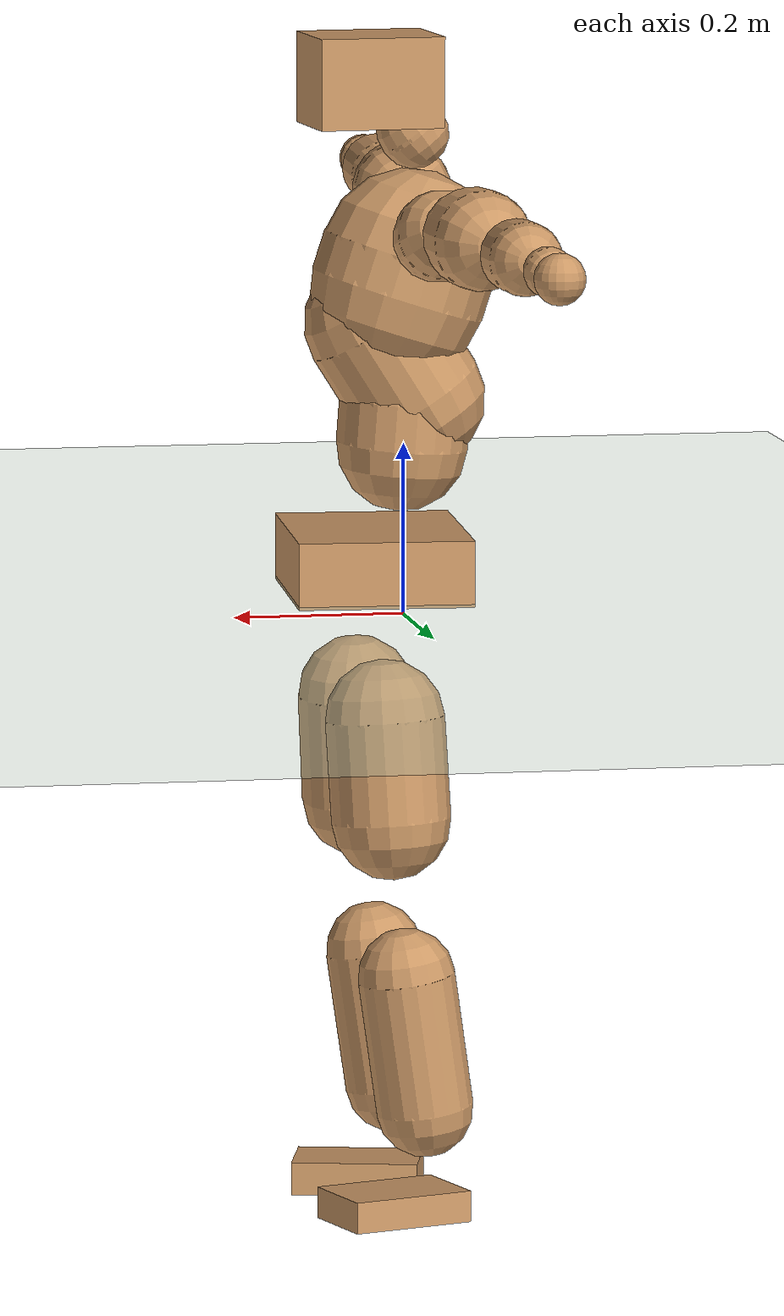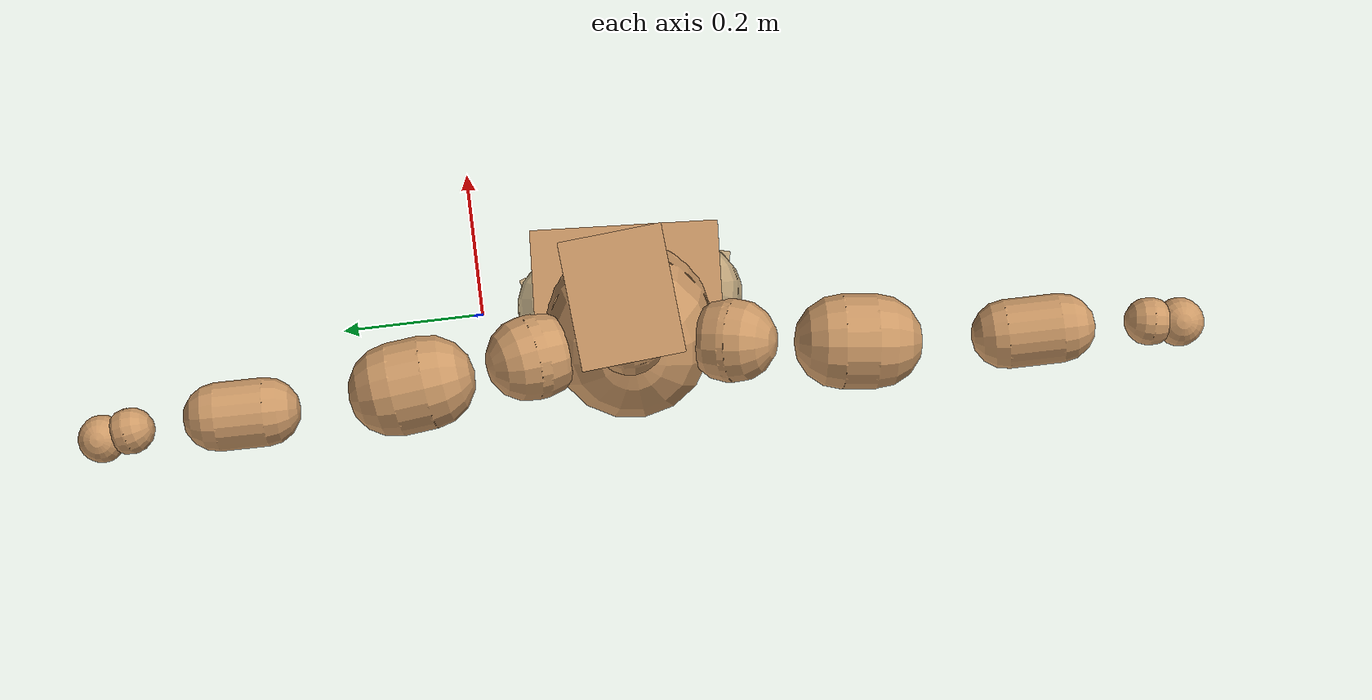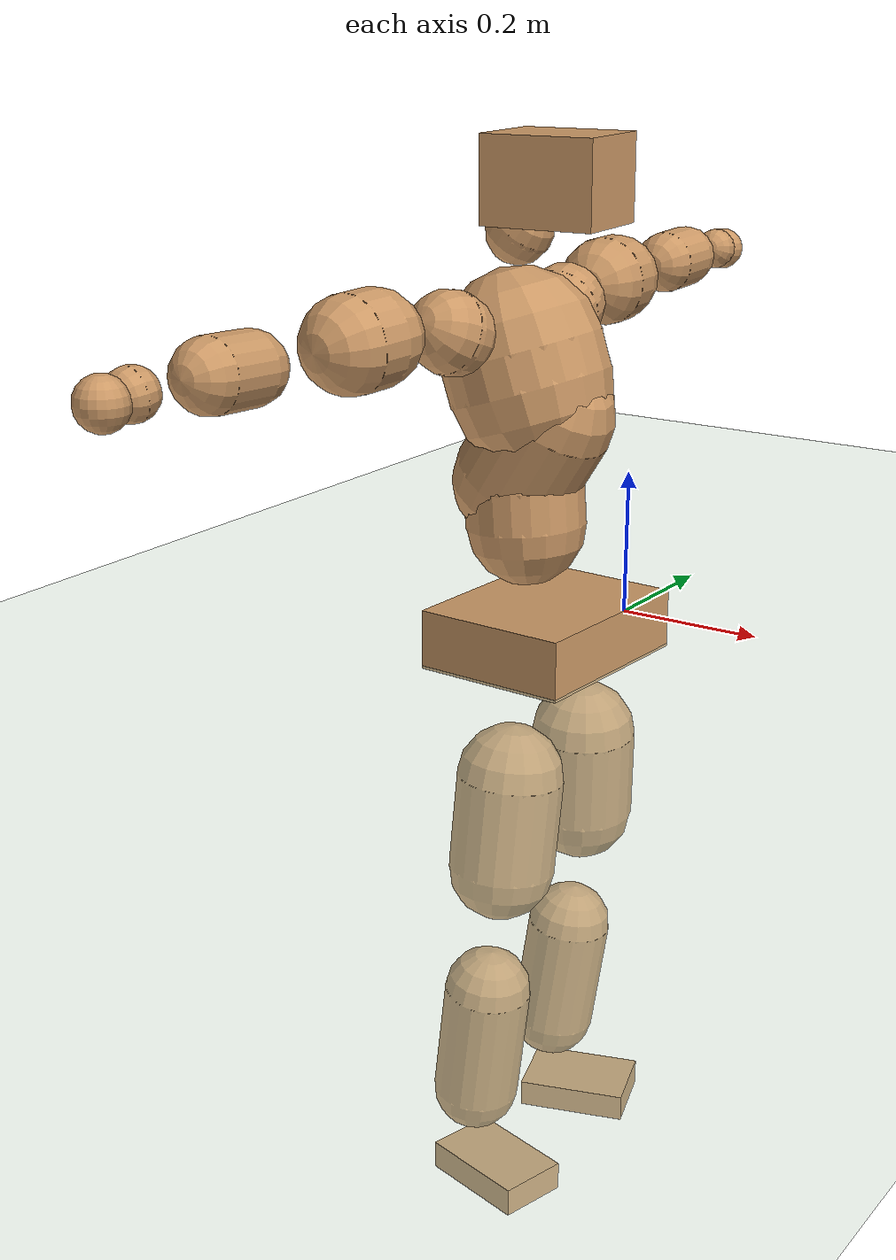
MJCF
<mujoco model="humanoid">
  <compiler coordinate="local" angle="radian"/>
  <default>
    <joint damping="0.0" armature="0.01" stiffness="0.0" limited="true"/>
    <geom conaffinity="1" condim="3" contype="7" margin="0.001" rgba="0.8 0.6 .4 1"/>
  </default>
  <asset>
    <texture type="skybox" builtin="gradient" rgb1=".4 .5 .6" rgb2="0 0 0" width="100" height="100"/>
    <texture builtin="flat" height="1278" mark="cross" markrgb="1 1 1" name="texgeom" random="0.01" rgb1="0.8 0.6 0.4" rgb2="0.8 0.6 0.4" type="cube" width="127"/>
    <texture builtin="checker" height="100" name="texplane" rgb1="0 0 0" rgb2="0.8 0.8 0.8" type="2d" width="100"/>
    <material name="MatPlane" reflectance="0.5" shininess="1" specular="1" texrepeat="60 60" texture="texplane"/>
    <material name="geom" texture="texgeom" texuniform="true"/>
  </asset>
  <worldbody>
    <light cutoff="100" diffuse="1 1 1" dir="-0 0 -1.3" directional="true" exponent="1" pos="0 0 1.3" specular=".1 .1 .1"/>
    <geom conaffinity="1" condim="3" name="floor" pos="0 0 0" rgba="0.8 0.9 0.8 1" size="100 100 .2" type="plane" material="MatPlane"/>
    <body name="Pelvis" pos="0.0024 -0.2078 0.0462">
      <freejoint name="Pelvis"/>
      <geom type="box" contype="1" conaffinity="1" density="5359.375076" pos="-0.0041 0.0002 -0.0124" size="0.1043 0.1315 0.0395" quat="0.9996 0.0000 0.0000 -0.0279" name="Pelvis"/>
      <body name="L_Hip" pos="0.0046 0.0882 -0.0875">
        <joint name="L_Hip_x" type="hinge" pos="0 0 0" axis="1 0 0" stiffness="1600" damping="160" armature="0.02" range="-180.0000 180.0000"/>
        <joint name="L_Hip_y" type="hinge" pos="0 0 0" axis="0 1 0" stiffness="1600" damping="160" armature="0.02" range="-180.0000 180.0000"/>
        <joint name="L_Hip_z" type="hinge" pos="0 0 0" axis="0 0 1" stiffness="1600" damping="160" armature="0.02" range="-180.0000 180.0000"/>
        <geom type="capsule" contype="1" conaffinity="1" density="2040.816327" size="0.0709" fromto="-0.0051 0.0062 -0.1006 -0.0113 0.0138 -0.2219" name="L_Hip"/>
        <body name="L_Knee" pos="-0.0164 0.02 -0.3225">
          <joint name="L_Knee_x" type="hinge" pos="0 0 0" axis="1 0 0" stiffness="1600" damping="160" armature="0.02" range="-180.0000 180.0000"/>
          <joint name="L_Knee_y" type="hinge" pos="0 0 0" axis="0 1 0" stiffness="1600" damping="160" armature="0.02" range="-180.0000 180.0000"/>
          <joint name="L_Knee_z" type="hinge" pos="0 0 0" axis="0 0 1" stiffness="1600" damping="160" armature="0.02" range="-180.0000 180.0000"/>
          <geom type="capsule" contype="1" conaffinity="1" density="1234.567901" size="0.0582" fromto="-0.0125 -0.0022 -0.0873 -0.0355 -0.0062 -0.2476" name="L_Knee"/>
          <body name="L_Ankle" pos="-0.0481 -0.0084 -0.3349">
            <joint name="L_Ankle_x" type="hinge" pos="0 0 0" axis="1 0 0" stiffness="1600" damping="160" armature="0.02" range="-180.0000 180.0000"/>
            <joint name="L_Ankle_y" type="hinge" pos="0 0 0" axis="0 1 0" stiffness="1600" damping="160" armature="0.02" range="-180.0000 180.0000"/>
            <joint name="L_Ankle_z" type="hinge" pos="0 0 0" axis="0 0 1" stiffness="1600" damping="160" armature="0.02" range="-180.0000 180.0000"/>
            <geom type="box" contype="1" conaffinity="1" density="1000.000065" pos="0.0522 0.0163 -0.0251" size="0.0757 0.052 0.0187" quat="0.9886 0.0000 0.0000 0.1503" name="L_Ankle"/>
            <body name="L_Toe" pos="0.1044 0.0325 -0.0503">
              <joint name="L_Toe_x" type="hinge" pos="0 0 0" axis="1 0 0" stiffness="1000" damping="100" armature="0.02" range="-180.0000 180.0000"/>
              <joint name="L_Toe_y" type="hinge" pos="0 0 0" axis="0 1 0" stiffness="1000" damping="100" armature="0.02" range="-180.0000 180.0000"/>
              <joint name="L_Toe_z" type="hinge" pos="0 0 0" axis="0 0 1" stiffness="1000" damping="100" armature="0.02" range="-180.0000 180.0000"/>
              <geom type="box" contype="1" conaffinity="1" density="7450668.427621" pos="0.0000 0.0000 0.0264" size="0.001 0.0024 0.001" quat="0.9877 0.0000 0.0000 0.1561" name="L_Toe"/>
            </body>
          </body>
        </body>
      </body>
      <body name="R_Hip" pos="0.0063 -0.0865 -0.0873">
        <joint name="R_Hip_x" type="hinge" pos="0 0 0" axis="1 0 0" stiffness="1600" damping="160" armature="0.02" range="-180.0000 180.0000"/>
        <joint name="R_Hip_y" type="hinge" pos="0 0 0" axis="0 1 0" stiffness="1600" damping="160" armature="0.02" range="-180.0000 180.0000"/>
        <joint name="R_Hip_z" type="hinge" pos="0 0 0" axis="0 0 1" stiffness="1600" damping="160" armature="0.02" range="-180.0000 180.0000"/>
        <geom type="capsule" contype="1" conaffinity="1" density="2040.816327" size="0.0703" fromto="-0.0052 -0.0081 -0.0999 -0.0119 -0.0185 -0.2293" name="R_Hip"/>
        <body name="R_Knee" pos="-0.017 -0.0265 -0.3292">
          <joint name="R_Knee_x" type="hinge" pos="0 0 0" axis="1 0 0" stiffness="1600" damping="160" armature="0.02" range="-180.0000 180.0000"/>
          <joint name="R_Knee_y" type="hinge" pos="0 0 0" axis="0 1 0" stiffness="1600" damping="160" armature="0.02" range="-180.0000 180.0000"/>
          <joint name="R_Knee_z" type="hinge" pos="0 0 0" axis="0 0 1" stiffness="1600" damping="160" armature="0.02" range="-180.0000 180.0000"/>
          <geom type="capsule" contype="1" conaffinity="1" density="1234.567901" size="0.0582" fromto="-0.0123 0.0026 -0.0873 -0.0356 0.0076 -0.2530" name="R_Knee"/>
          <body name="R_Ankle" pos="-0.0479 0.0102 -0.3403">
            <joint name="R_Ankle_x" type="hinge" pos="0 0 0" axis="1 0 0" stiffness="1600" damping="160" armature="0.02" range="-180.0000 180.0000"/>
            <joint name="R_Ankle_y" type="hinge" pos="0 0 0" axis="0 1 0" stiffness="1600" damping="160" armature="0.02" range="-180.0000 180.0000"/>
            <joint name="R_Ankle_z" type="hinge" pos="0 0 0" axis="0 0 1" stiffness="1600" damping="160" armature="0.02" range="-180.0000 180.0000"/>
            <geom type="box" contype="1" conaffinity="1" density="1000.000046" pos="0.0546 -0.0143 -0.0224" size="0.0763 0.0475 0.0199" quat="0.9918 0.0000 0.0000 -0.1281" name="R_Ankle"/>
            <body name="R_Toe" pos="0.1091 -0.0287 -0.0449">
              <joint name="R_Toe_x" type="hinge" pos="0 0 0" axis="1 0 0" stiffness="1000" damping="100" armature="0.02" range="-180.0000 180.0000"/>
              <joint name="R_Toe_y" type="hinge" pos="0 0 0" axis="0 1 0" stiffness="1000" damping="100" armature="0.02" range="-180.0000 180.0000"/>
              <joint name="R_Toe_z" type="hinge" pos="0 0 0" axis="0 0 1" stiffness="1000" damping="100" armature="0.02" range="-180.0000 180.0000"/>
              <geom type="box" contype="1" conaffinity="1" density="7602521.248116" pos="0.0000 0.0000 0.0238" size="0.001 0.0023 0.0011" quat="0.9931 0.0000 0.0000 -0.1175" name="R_Toe"/>
            </body>
          </body>
        </body>
      </body>
      <body name="Torso" pos="-0.0354 -0.0003 0.1003">
        <joint name="Torso_x" type="hinge" pos="0 0 0" axis="1 0 0" stiffness="2000" damping="200" armature="0.02" range="-180.0000 180.0000"/>
        <joint name="Torso_y" type="hinge" pos="0 0 0" axis="0 1 0" stiffness="2000" damping="200" armature="0.02" range="-180.0000 180.0000"/>
        <joint name="Torso_z" type="hinge" pos="0 0 0" axis="0 0 1" stiffness="2000" damping="200" armature="0.02" range="-180.0000 180.0000"/>
        <geom type="capsule" contype="1" conaffinity="1" density="2040.816327" size="0.0785" fromto="-0.0061 0.0008 0.0783 -0.0019 0.0002 0.0240" name="Torso"/>
        <body name="Spine" pos="-0.0079 0.0011 0.1023">
          <joint name="Spine_x" type="hinge" pos="0 0 0" axis="1 0 0" stiffness="2000" damping="200" armature="0.02" range="-180.0000 180.0000"/>
          <joint name="Spine_y" type="hinge" pos="0 0 0" axis="0 1 0" stiffness="2000" damping="200" armature="0.02" range="-180.0000 180.0000"/>
          <joint name="Spine_z" type="hinge" pos="0 0 0" axis="0 0 1" stiffness="2000" damping="200" armature="0.02" range="-180.0000 180.0000"/>
          <geom type="capsule" contype="1" conaffinity="1" density="2040.816327" size="0.0808" fromto="0.0429 -0.0004 0.0684 -0.0135 0.0001 -0.0215" name="Spine"/>
          <body name="Chest" pos="0.0294 -0.0003 0.0469">
            <joint name="Chest_x" type="hinge" pos="0 0 0" axis="1 0 0" stiffness="2000" damping="200" armature="0.02" range="-180.0000 180.0000"/>
            <joint name="Chest_y" type="hinge" pos="0 0 0" axis="0 1 0" stiffness="2000" damping="200" armature="0.02" range="-180.0000 180.0000"/>
            <joint name="Chest_z" type="hinge" pos="0 0 0" axis="0 0 1" stiffness="2000" damping="200" armature="0.02" range="-180.0000 180.0000"/>
            <geom type="capsule" contype="1" conaffinity="1" density="2040.816327" size="0.1052" fromto="-0.0325 -0.0010 0.1001 -0.0175 -0.0005 0.0540" name="Chest"/>
            <body name="Neck" pos="-0.0611 -0.0014 0.2178">
              <joint name="Neck_x" type="hinge" pos="0 0 0" axis="1 0 0" stiffness="1000" damping="100" armature="0.02" range="-180.0000 180.0000"/>
              <joint name="Neck_y" type="hinge" pos="0 0 0" axis="0 1 0" stiffness="1000" damping="100" armature="0.02" range="-180.0000 180.0000"/>
              <joint name="Neck_z" type="hinge" pos="0 0 0" axis="0 0 1" stiffness="1000" damping="100" armature="0.02" range="-180.0000 180.0000"/>
              <geom type="capsule" contype="1" conaffinity="1" density="1000" size="0.0421" fromto="0.0264 0.0011 0.0328 0.0232 0.0010 0.0287" name="Neck"/>
              <body name="Head" pos="0.0496 0.0021 0.0615">
                <joint name="Head_x" type="hinge" pos="0 0 0" axis="1 0 0" stiffness="1000" damping="100" armature="0.02" range="-180.0000 180.0000"/>
                <joint name="Head_y" type="hinge" pos="0 0 0" axis="0 1 0" stiffness="1000" damping="100" armature="0.02" range="-180.0000 180.0000"/>
                <joint name="Head_z" type="hinge" pos="0 0 0" axis="0 0 1" stiffness="1000" damping="100" armature="0.02" range="-180.0000 180.0000"/>
                <geom type="box" contype="1" conaffinity="1" density="2249.999936" pos="0.0258 0.0021 0.0317" size="0.0748 0.0602 0.0539" quat="0.9992 0.0000 0.0000 0.0400" name="Head"/>
              </body>
            </body>
            <body name="L_Thorax" pos="-0.041 0.0779 0.1227">
              <joint name="L_Thorax_x" type="hinge" pos="0 0 0" axis="1 0 0" stiffness="1000" damping="100" armature="0.02" range="-180.0000 180.0000"/>
              <joint name="L_Thorax_y" type="hinge" pos="0 0 0" axis="0 1 0" stiffness="1000" damping="100" armature="0.02" range="-180.0000 180.0000"/>
              <joint name="L_Thorax_z" type="hinge" pos="0 0 0" axis="0 0 1" stiffness="1000" damping="100" armature="0.02" range="-180.0000 180.0000"/>
              <geom type="capsule" contype="1" conaffinity="1" density="1000" size="0.0532" fromto="-0.0066 0.0501 0.0166 -0.0048 0.0367 0.0122" name="L_Thorax"/>
              <body name="L_Shoulder" pos="-0.0114 0.0867 0.0288">
                <joint name="L_Shoulder_x" type="hinge" pos="0 0 0" axis="1 0 0" stiffness="1000" damping="100" armature="0.02" range="-720.0000 720.0000"/>
                <joint name="L_Shoulder_y" type="hinge" pos="0 0 0" axis="0 1 0" stiffness="1000" damping="100" armature="0.02" range="-720.0000 720.0000"/>
                <joint name="L_Shoulder_z" type="hinge" pos="0 0 0" axis="0 0 1" stiffness="1000" damping="100" armature="0.02" range="-720.0000 720.0000"/>
                <geom type="capsule" contype="1" conaffinity="1" density="1000" size="0.0587" fromto="-0.0097 0.0882 -0.0013 -0.0142 0.1292 -0.0019" name="L_Shoulder"/>
                <body name="L_Elbow" pos="-0.0239 0.2174 -0.0032">
                  <joint name="L_Elbow_x" type="hinge" pos="0 0 0" axis="1 0 0" stiffness="1000" damping="100" armature="0.02" range="-720.0000 720.0000"/>
                  <joint name="L_Elbow_y" type="hinge" pos="0 0 0" axis="0 1 0" stiffness="1000" damping="100" armature="0.02" range="-720.0000 720.0000"/>
                  <joint name="L_Elbow_z" type="hinge" pos="0 0 0" axis="0 0 1" stiffness="1000" damping="100" armature="0.02" range="-720.0000 720.0000"/>
                  <geom type="capsule" contype="1" conaffinity="1" density="1000" size="0.0425" fromto="0.0008 0.0724 0.0025 0.0014 0.1323 0.0046" name="L_Elbow"/>
                  <body name="L_Wrist" pos="0.0022 0.2047 0.0071">
                    <joint name="L_Wrist_x" type="hinge" pos="0 0 0" axis="1 0 0" stiffness="600" damping="60" armature="0.02" range="-180.0000 180.0000"/>
                    <joint name="L_Wrist_y" type="hinge" pos="0 0 0" axis="0 1 0" stiffness="600" damping="60" armature="0.02" range="-180.0000 180.0000"/>
                    <joint name="L_Wrist_z" type="hinge" pos="0 0 0" axis="0 0 1" stiffness="600" damping="60" armature="0.02" range="-180.0000 180.0000"/>
                    <geom type="capsule" contype="1" conaffinity="1" density="1000" size="0.0288" fromto="-0.0056 0.0355 -0.0042 -0.0059 0.0374 -0.0045" name="L_Wrist"/>
                    <body name="L_Hand" pos="-0.0115 0.0729 -0.0087">
                      <joint name="L_Hand_x" type="hinge" pos="0 0 0" axis="1 0 0" stiffness="600" damping="60" armature="0.02" range="-180.0000 180.0000"/>
                      <joint name="L_Hand_y" type="hinge" pos="0 0 0" axis="0 1 0" stiffness="600" damping="60" armature="0.02" range="-180.0000 180.0000"/>
                      <joint name="L_Hand_z" type="hinge" pos="0 0 0" axis="0 0 1" stiffness="600" damping="60" armature="0.02" range="-180.0000 180.0000"/>
                      <geom type="sphere" contype="1" conaffinity="1" density="1000" size="0.0297" pos="0.0000 0.0000 0.0000" name="L_Hand"/>
                    </body>
                  </body>
                </body>
              </body>
            </body>
            <body name="R_Thorax" pos="-0.048 -0.081 0.1217">
              <joint name="R_Thorax_x" type="hinge" pos="0 0 0" axis="1 0 0" stiffness="1000" damping="100" armature="0.02" range="-180.0000 180.0000"/>
              <joint name="R_Thorax_y" type="hinge" pos="0 0 0" axis="0 1 0" stiffness="1000" damping="100" armature="0.02" range="-180.0000 180.0000"/>
              <joint name="R_Thorax_z" type="hinge" pos="0 0 0" axis="0 0 1" stiffness="1000" damping="100" armature="0.02" range="-180.0000 180.0000"/>
              <geom type="capsule" contype="1" conaffinity="1" density="1000" size="0.0521" fromto="-0.0070 -0.0484 0.0178 -0.0058 -0.0402 0.0147" name="R_Thorax"/>
              <body name="R_Shoulder" pos="-0.0128 -0.0886 0.0325">
                <joint name="R_Shoulder_x" type="hinge" pos="0 0 0" axis="1 0 0" stiffness="1000" damping="100" armature="0.02" range="-720.0000 720.0000"/>
                <joint name="R_Shoulder_y" type="hinge" pos="0 0 0" axis="0 1 0" stiffness="1000" damping="100" armature="0.02" range="-720.0000 720.0000"/>
                <joint name="R_Shoulder_z" type="hinge" pos="0 0 0" axis="0 0 1" stiffness="1000" damping="100" armature="0.02" range="-720.0000 720.0000"/>
                <geom type="capsule" contype="1" conaffinity="1" density="1000" size="0.0592" fromto="-0.0099 -0.0886 -0.0039 -0.0144 -0.1293 -0.0057" name="R_Shoulder"/>
                <body name="R_Elbow" pos="-0.0243 -0.2178 -0.0096">
                  <joint name="R_Elbow_x" type="hinge" pos="0 0 0" axis="1 0 0" stiffness="1000" damping="100" armature="0.02" range="-720.0000 720.0000"/>
                  <joint name="R_Elbow_y" type="hinge" pos="0 0 0" axis="0 1 0" stiffness="1000" damping="100" armature="0.02" range="-720.0000 720.0000"/>
                  <joint name="R_Elbow_z" type="hinge" pos="0 0 0" axis="0 0 1" stiffness="1000" damping="100" armature="0.02" range="-720.0000 720.0000"/>
                  <geom type="capsule" contype="1" conaffinity="1" density="1000" size="0.0427" fromto="0.0002 -0.0727 0.0032 0.0003 -0.1398 0.0061" name="R_Elbow"/>
                  <body name="R_Wrist" pos="0.0005 -0.2124 0.0093">
                    <joint name="R_Wrist_x" type="hinge" pos="0 0 0" axis="1 0 0" stiffness="600" damping="60" armature="0.02" range="-180.0000 180.0000"/>
                    <joint name="R_Wrist_y" type="hinge" pos="0 0 0" axis="0 1 0" stiffness="600" damping="60" armature="0.02" range="-180.0000 180.0000"/>
                    <joint name="R_Wrist_z" type="hinge" pos="0 0 0" axis="0 0 1" stiffness="600" damping="60" armature="0.02" range="-180.0000 180.0000"/>
                    <geom type="capsule" contype="1" conaffinity="1" density="1000" size="0.0298" fromto="-0.0047 -0.0361 -0.0033 -0.0050 -0.0380 -0.0035" name="R_Wrist"/>
                    <body name="R_Hand" pos="-0.0097 -0.0741 -0.0068">
                      <joint name="R_Hand_x" type="hinge" pos="0 0 0" axis="1 0 0" stiffness="600" damping="60" armature="0.02" range="-180.0000 180.0000"/>
                      <joint name="R_Hand_y" type="hinge" pos="0 0 0" axis="0 1 0" stiffness="600" damping="60" armature="0.02" range="-180.0000 180.0000"/>
                      <joint name="R_Hand_z" type="hinge" pos="0 0 0" axis="0 0 1" stiffness="600" damping="60" armature="0.02" range="-180.0000 180.0000"/>
                      <geom type="sphere" contype="1" conaffinity="1" density="1000" size="0.0303" pos="0.0000 0.0000 0.0000" name="R_Hand"/>
                    </body>
                  </body>
                </body>
              </body>
            </body>
          </body>
        </body>
      </body>
    </body>
  </worldbody>
  <actuator>
    <motor name="L_Hip_x" joint="L_Hip_x" gear="500"/>
    <motor name="L_Hip_y" joint="L_Hip_y" gear="500"/>
    <motor name="L_Hip_z" joint="L_Hip_z" gear="500"/>
    <motor name="L_Knee_x" joint="L_Knee_x" gear="500"/>
    <motor name="L_Knee_y" joint="L_Knee_y" gear="500"/>
    <motor name="L_Knee_z" joint="L_Knee_z" gear="500"/>
    <motor name="L_Ankle_x" joint="L_Ankle_x" gear="500"/>
    <motor name="L_Ankle_y" joint="L_Ankle_y" gear="500"/>
    <motor name="L_Ankle_z" joint="L_Ankle_z" gear="500"/>
    <motor name="L_Toe_x" joint="L_Toe_x" gear="500"/>
    <motor name="L_Toe_y" joint="L_Toe_y" gear="500"/>
    <motor name="L_Toe_z" joint="L_Toe_z" gear="500"/>
    <motor name="R_Hip_x" joint="R_Hip_x" gear="500"/>
    <motor name="R_Hip_y" joint="R_Hip_y" gear="500"/>
    <motor name="R_Hip_z" joint="R_Hip_z" gear="500"/>
    <motor name="R_Knee_x" joint="R_Knee_x" gear="500"/>
    <motor name="R_Knee_y" joint="R_Knee_y" gear="500"/>
    <motor name="R_Knee_z" joint="R_Knee_z" gear="500"/>
    <motor name="R_Ankle_x" joint="R_Ankle_x" gear="500"/>
    <motor name="R_Ankle_y" joint="R_Ankle_y" gear="500"/>
    <motor name="R_Ankle_z" joint="R_Ankle_z" gear="500"/>
    <motor name="R_Toe_x" joint="R_Toe_x" gear="500"/>
    <motor name="R_Toe_y" joint="R_Toe_y" gear="500"/>
    <motor name="R_Toe_z" joint="R_Toe_z" gear="500"/>
    <motor name="Torso_x" joint="Torso_x" gear="500"/>
    <motor name="Torso_y" joint="Torso_y" gear="500"/>
    <motor name="Torso_z" joint="Torso_z" gear="500"/>
    <motor name="Spine_x" joint="Spine_x" gear="500"/>
    <motor name="Spine_y" joint="Spine_y" gear="500"/>
    <motor name="Spine_z" joint="Spine_z" gear="500"/>
    <motor name="Chest_x" joint="Chest_x" gear="500"/>
    <motor name="Chest_y" joint="Chest_y" gear="500"/>
    <motor name="Chest_z" joint="Chest_z" gear="500"/>
    <motor name="Neck_x" joint="Neck_x" gear="500"/>
    <motor name="Neck_y" joint="Neck_y" gear="500"/>
    <motor name="Neck_z" joint="Neck_z" gear="500"/>
    <motor name="Head_x" joint="Head_x" gear="500"/>
    <motor name="Head_y" joint="Head_y" gear="500"/>
    <motor name="Head_z" joint="Head_z" gear="500"/>
    <motor name="L_Thorax_x" joint="L_Thorax_x" gear="500"/>
    <motor name="L_Thorax_y" joint="L_Thorax_y" gear="500"/>
    <motor name="L_Thorax_z" joint="L_Thorax_z" gear="500"/>
    <motor name="L_Shoulder_x" joint="L_Shoulder_x" gear="500"/>
    <motor name="L_Shoulder_y" joint="L_Shoulder_y" gear="500"/>
    <motor name="L_Shoulder_z" joint="L_Shoulder_z" gear="500"/>
    <motor name="L_Elbow_x" joint="L_Elbow_x" gear="500"/>
    <motor name="L_Elbow_y" joint="L_Elbow_y" gear="500"/>
    <motor name="L_Elbow_z" joint="L_Elbow_z" gear="500"/>
    <motor name="L_Wrist_x" joint="L_Wrist_x" gear="500"/>
    <motor name="L_Wrist_y" joint="L_Wrist_y" gear="500"/>
    <motor name="L_Wrist_z" joint="L_Wrist_z" gear="500"/>
    <motor name="L_Hand_x" joint="L_Hand_x" gear="500"/>
    <motor name="L_Hand_y" joint="L_Hand_y" gear="500"/>
    <motor name="L_Hand_z" joint="L_Hand_z" gear="500"/>
    <motor name="R_Thorax_x" joint="R_Thorax_x" gear="500"/>
    <motor name="R_Thorax_y" joint="R_Thorax_y" gear="500"/>
    <motor name="R_Thorax_z" joint="R_Thorax_z" gear="500"/>
    <motor name="R_Shoulder_x" joint="R_Shoulder_x" gear="500"/>
    <motor name="R_Shoulder_y" joint="R_Shoulder_y" gear="500"/>
    <motor name="R_Shoulder_z" joint="R_Shoulder_z" gear="500"/>
    <motor name="R_Elbow_x" joint="R_Elbow_x" gear="500"/>
    <motor name="R_Elbow_y" joint="R_Elbow_y" gear="500"/>
    <motor name="R_Elbow_z" joint="R_Elbow_z" gear="500"/>
    <motor name="R_Wrist_x" joint="R_Wrist_x" gear="500"/>
    <motor name="R_Wrist_y" joint="R_Wrist_y" gear="500"/>
    <motor name="R_Wrist_z" joint="R_Wrist_z" gear="500"/>
    <motor name="R_Hand_x" joint="R_Hand_x" gear="500"/>
    <motor name="R_Hand_y" joint="R_Hand_y" gear="500"/>
    <motor name="R_Hand_z" joint="R_Hand_z" gear="500"/>
  </actuator>
  <contact>
    <exclude body1="Torso" body2="Chest"/>
    <exclude body1="Head" body2="Chest"/>
    <exclude body1="R_Knee" body2="R_Toe"/>
    <exclude body1="R_Knee" body2="L_Ankle"/>
    <exclude body1="R_Knee" body2="L_Toe"/>
    <exclude body1="L_Knee" body2="L_Toe"/>
    <exclude body1="L_Knee" body2="R_Ankle"/>
    <exclude body1="L_Knee" body2="R_Toe"/>
    <exclude body1="L_Shoulder" body2="Chest"/>
    <exclude body1="R_Shoulder" body2="Chest"/>
  </contact>
  <sensor/>
  <size njmax="700" nconmax="700"/>
</mujoco>
